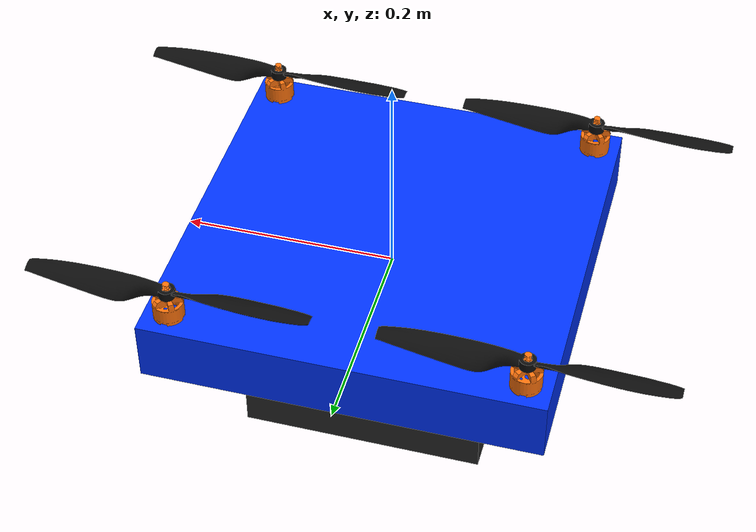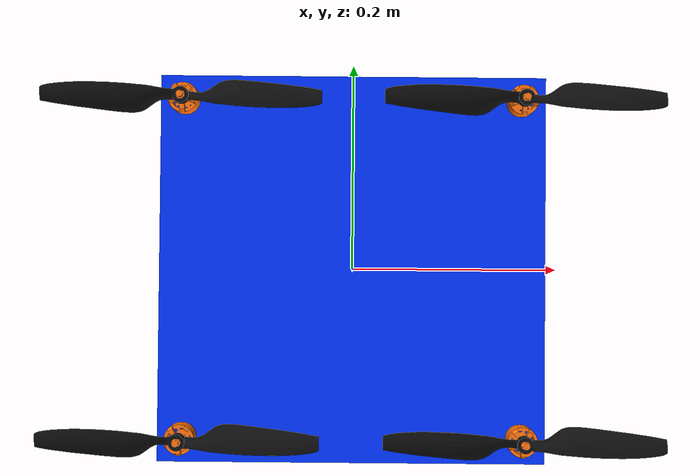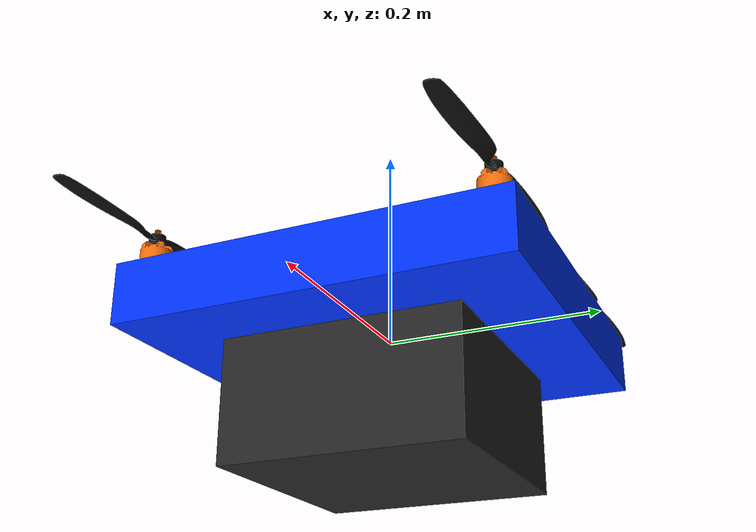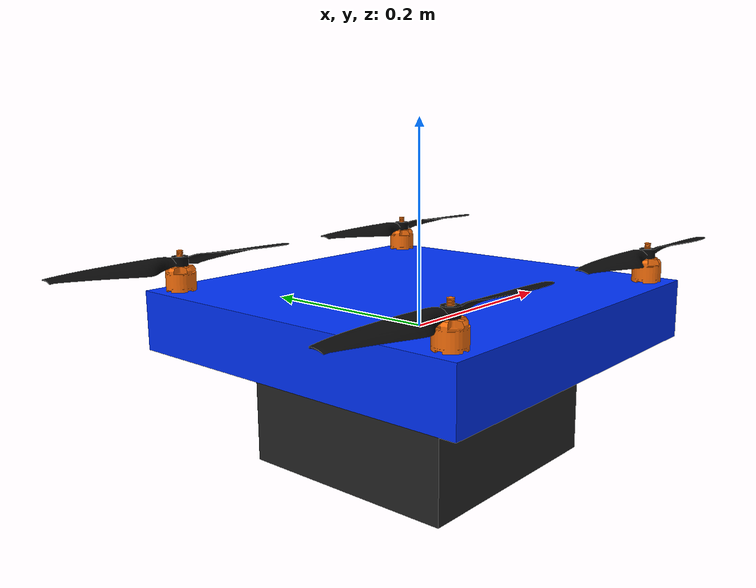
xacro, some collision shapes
<?xml version="1.0"?>
<robot name="drone" xmlns:xacro="http://www.ros.org/wiki/xacro">

    <xacro:arg name="use_sim" default="true" />

    <xacro:if value="$(arg use_sim)">
        <xacro:include filename="$(find drone_description)/urdf/control/drone.gazebo.xacro" />
    </xacro:if>
    <xacro:include filename="$(find drone_description)/urdf/robot/macros.xacro" />

    <link name="base_footprint"/>
    <joint name="base_footprint_to_base_link" type="fixed">
      <parent link="base_footprint"/>
      <child link="base_link"/>
      <origin xyz="0 0 0" rpy="0 0 0"/>
    </joint>

    <link name="base_link">
        <visual>
            <origin xyz="0 0 0"/>
            <geometry>
                <mesh filename="package://drone_description/meshes/frame.stl"/>
            </geometry>
            <material name="blue_body">
                <color rgba="0.0 0.2 1.0 1.0"/>
            </material>
        </visual>
        <collision>
            <origin xyz="0 0 0.0115" rpy="0 0 0"/>
            <geometry>
                <box size="0.365 0.365 0.0575"/>
            </geometry>
        </collision>
        <inertial>
            <origin xyz="0 0 0" rpy="0 0 0"/>
            <mass value="0.803"/>
            <inertia ixx="0.00565" ixy="0.000001" ixz="-0.000047"
                    iyy="0.00602" iyz="-0.000002" izz="0.0113"/>
        </inertial>
    </link>

    <link name="landing_gear">
        <visual>
            <origin xyz="0 0 0"/>
            <geometry>
                <mesh filename="package://drone_description/meshes/landing_gear.stl"/>
            </geometry>
            <material name="dark_gray">
                <color rgba="0.15 0.15 0.15 1.0"/>
            </material>
        </visual>
        <collision>
            <origin xyz="0 0 -0.065" rpy="0 0 0"/>
            <geometry>
                <box size="0.225 0.225 0.135"/>
            </geometry>
        </collision>
        <inertial>
            <origin xyz="0 0 -0.10" rpy="0 0 0"/>
            <mass value="0.090"/>
            <inertia ixx="0.00016" ixy="0" ixz="0"
                    iyy="0.000641" iyz="0" izz="0.000769"/>
        </inertial>
    </link>

    <joint name="frame_to_landing_gear" type="fixed">
        <parent link="base_link"/>
        <child link="landing_gear"/>
        <origin xyz="0 0 0" rpy="0 0 0"/>
    </joint>

    <xacro:motor_assembly number="1" x="0.1591" y="0.1591"/>
    <xacro:motor_assembly number="2" x="-0.1591" y="0.1591"/>
    <xacro:motor_assembly number="3" x="0.1591" y="-0.1591"/>
    <xacro:motor_assembly number="4" x="-0.1591" y="-0.1591"/>

</robot>

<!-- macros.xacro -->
<robot xmlns:xacro="http://www.ros.org/wiki/xacro">

    <xacro:macro name="motor_assembly" params="number x y">
        <link name="motor${number}">
            <visual>
                <origin xyz="0 0 0"/>
                <geometry>
                    <mesh filename="package://drone_description/meshes/motor.stl"/>
                </geometry>
                <material name="bright_orange">
                    <color rgba="1.0 0.45 0.05 1.0"/>
                </material>
            </visual>
            <collision>
                <origin xyz="0 0 0.0135" rpy="0 0 0"/>
                <geometry>
                    <box size="0.0225 0.0225 0.027"/>
                </geometry>
            </collision>
            <inertial>
                <origin xyz="0 0 0" rpy="0 0 0"/>
                <mass value="0.047"/>
                <inertia ixx="5.7464844e-06" ixy="0.0" ixz="0.0"
                        iyy="5.7464844e-06" iyz="0.0" izz="4.4429688e-06"/>
            </inertial>
        </link>

        <joint name="frame_to_motor${number}" type="fixed">
            <parent link="base_link"/>
            <child link="motor${number}"/>
            <origin xyz="${x} ${y} 0.0385"/>
        </joint>

        <link name="propeller${number}">
            <visual>
                <origin xyz="0 0 0"/>
                <geometry>
                    <mesh filename="package://drone_description/meshes/propeller.stl"/>
                </geometry>
                <material name="matte_black">
                    <color rgba="0.05 0.05 0.05 1.0"/>
                </material>
            </visual>
            <collision>
                <origin xyz="0 0 0" rpy="0 0 0"/>
                <geometry>
                    <box size="0.265 0.04 0.01"/>
                </geometry>
            </collision>
            <inertial>
                <origin xyz="0 0 0" rpy="0 0 0"/>
                <mass value="0.008"/>
                <inertia ixx="1.00e-07" ixy="0.0" ixz="0.0"
                        iyy="1.00e-07" iyz="0.0" izz="2.7526827e-05"/>
            </inertial>
        </link>

        <joint name="motor_to_propeller${number}" type="fixed">
            <parent link="motor${number}"/>
            <child link="propeller${number}"/>
            <origin xyz="0 0 0.0295"/>
        </joint>
    </xacro:macro>

</robot>
